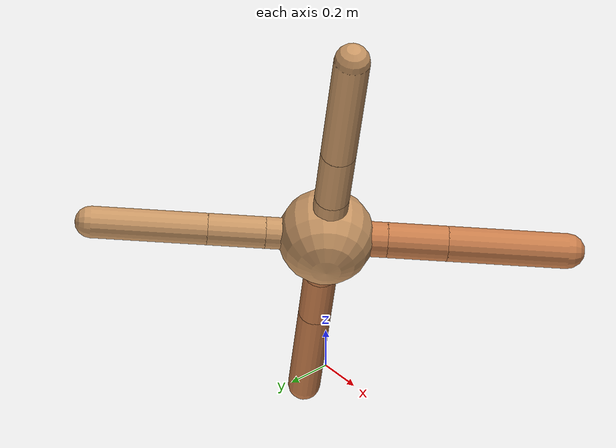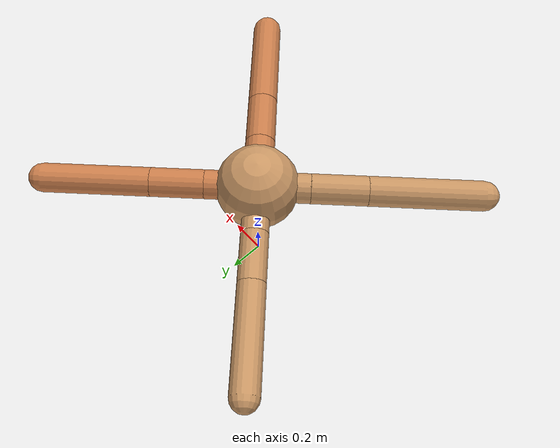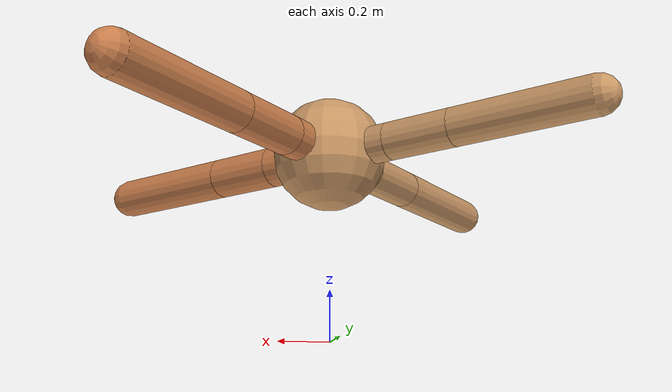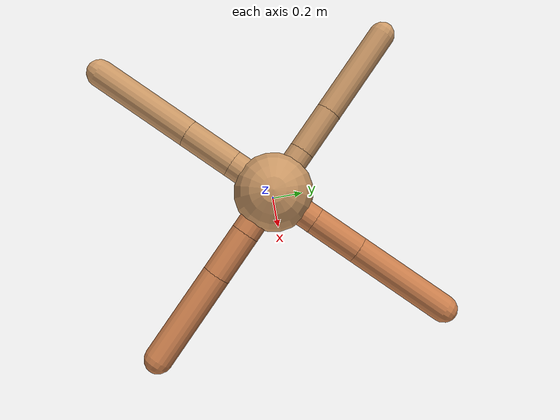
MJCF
<?xml version="1.0" ?>
<mujoco model="ant">

	<compiler angle="degree" coordinate="local" inertiafromgeom="true"/>

	<option integrator="RK4" timestep="0.01"/>

	<custom>

		<numeric data="0.0 0.0 0.55 1.0 0.0 0.0 0.0 0.0 1.0 0.0 -1.0 0.0 -1.0 0.0 1.0" name="init_qpos"/>

	</custom>

	<default>

		<joint armature="1" damping="1" limited="true"/>

		<geom conaffinity="0" condim="3" density="5.0" friction="1.5 0.1 0.1" margin="0.01" rgba="0.8 0.6 0.4 1"/>

	</default>

	<worldbody>

		<body name="torso" pos="0 0 0.75">

			<geom name="torso_geom" pos="0 0 0" size="0.2260730853337071" type="sphere"/>

			<!--joint armature="0" damping="0" limited="false" margin="0.01" name="root" pos="0 0 0" type="free"/-->

			<body name="front_left_leg" pos="0 0 0">

				<geom fromto="0 0 0 0.2 0.2 0" name="aux_1_geom" size="0.07887269671724682" type="capsule" rgba=".8 .5 .3 1"/>

				<body name="aux_1" pos="0.2 0.2 0">

					<joint axis="0 0 1" name="hip_1" pos="0.0 0.0 0.0" range="-40 40" type="hinge"/>

					<geom fromto="0 0 0 0.20507934677208572 0.20507934677208572 0" name="left_leg_geom" size="0.07887269671724682" type="capsule" rgba=".8 .5 .3 1"/>

					<body pos="0.20507934677208572 0.20507934677208572 0" name="front_left_foot">

						<joint axis="-1 1 0" name="ankle_1" pos="0.0 0.0 0.0" range="30 100" type="hinge"/>

						<geom fromto="0 0 0 0.41015869354417145 0.41015869354417145 0" name="left_ankle_geom" size="0.07887269671724682" type="capsule" rgba=".8 .5 .3 1"/>

					</body>

				</body>

			</body>

			<body name="front_right_leg" pos="0 0 0">

				<geom fromto="0 0 0 -0.2 0.2 0" name="aux_2_geom" size="0.07452354876988071" type="capsule"/>

				<body name="aux_2" pos="-0.2 0.2 0">

					<joint axis="0 0 1" name="hip_2" pos="0.0 0.0 0.0" range="-40 40" type="hinge"/>

					<geom fromto="0 0 0 -0.19073869923575548 0.19073869923575548 0" name="right_leg_geom" size="0.07452354876988071" type="capsule"/>

					<body pos="-0.19073869923575548 0.19073869923575548 0" name="front_right_foot">

						<joint axis="1 1 0" name="ankle_2" pos="0.0 0.0 0.0" range="-100 -30" type="hinge"/>

						<geom fromto="0 0 0 -0.38147739847151096 0.38147739847151096 0" name="right_ankle_geom" size="0.07452354876988071" type="capsule"/>

					</body>

				</body>

			</body>

			<body name="left_back_leg" pos="0 0 0">

				<geom fromto="0 0 0 -0.2 -0.2 0" name="aux_3_geom" size="0.08116790065805013" type="capsule"/>

				<body name="aux_3" pos="-0.2 -0.2 0">

					<joint axis="0 0 1" name="hip_3" pos="0.0 0.0 0.0" range="-40 40" type="hinge"/>

					<geom fromto="0 0 0 -0.21534516896821235 -0.21534516896821235 0" name="back_leg_geom" size="0.08116790065805013" type="capsule"/>

					<body pos="-0.21534516896821235 -0.21534516896821235 0" name="left_back_foot">

						<joint axis="-1 1 0" name="ankle_3" pos="0.0 0.0 0.0" range="-100 -30" type="hinge"/>

						<geom fromto="0 0 0 -0.4306903379364247 -0.4306903379364247 0" name="third_ankle_geom" size="0.08116790065805013" type="capsule"/>

					</body>

				</body>

			</body>

			<body name="right_back_leg" pos="0 0 0">

				<geom fromto="0 0 0 0.2 -0.2 0" name="aux_4_geom" size="0.08318798966194237" type="capsule" rgba=".8 .5 .3 1"/>

				<body name="aux_4" pos="0.2 -0.2 0">

					<joint axis="0 0 1" name="hip_4" pos="0.0 0.0 0.0" range="-40 40" type="hinge"/>

					<geom fromto="0 0 0 0.20011148730827522 -0.20011148730827522 0" name="rightback_leg_geom" size="0.08318798966194237" type="capsule" rgba=".8 .5 .3 1"/>

					<body pos="0.20011148730827522 -0.20011148730827522 0" name="right_back_foot">

						<joint axis="1 1 0" name="ankle_4" pos="0.0 0.0 0.0" range="30 100" type="hinge"/>

						<geom fromto="0 0 0 0.40022297461655043 -0.40022297461655043 0" name="fourth_ankle_geom" size="0.08318798966194237" type="capsule" rgba=".8 .5 .3 1"/>

					</body>

				</body>

			</body>

		</body>

	</worldbody>

	<actuator>

		<motor ctrllimited="true" ctrlrange="-1.0 1.0" joint="hip_4" gear="150"/>

		<motor ctrllimited="true" ctrlrange="-1.0 1.0" joint="ankle_4" gear="150"/>

		<motor ctrllimited="true" ctrlrange="-1.0 1.0" joint="hip_1" gear="150"/>

		<motor ctrllimited="true" ctrlrange="-1.0 1.0" joint="ankle_1" gear="150"/>

		<motor ctrllimited="true" ctrlrange="-1.0 1.0" joint="hip_2" gear="150"/>

		<motor ctrllimited="true" ctrlrange="-1.0 1.0" joint="ankle_2" gear="150"/>

		<motor ctrllimited="true" ctrlrange="-1.0 1.0" joint="hip_3" gear="150"/>

		<motor ctrllimited="true" ctrlrange="-1.0 1.0" joint="ankle_3" gear="150"/>

	</actuator>

</mujoco>
